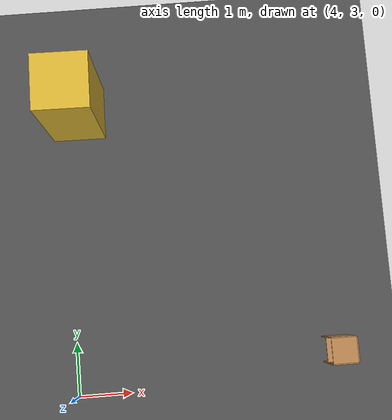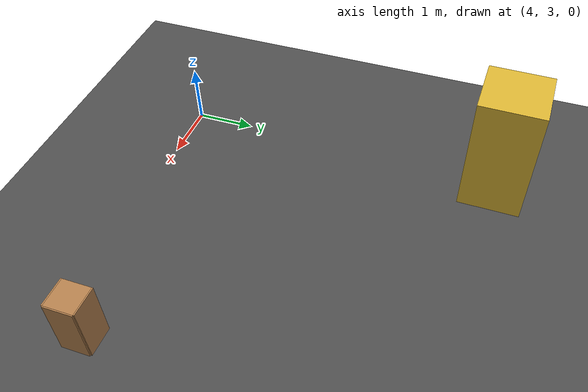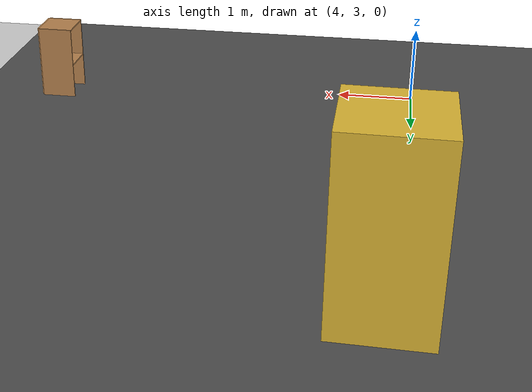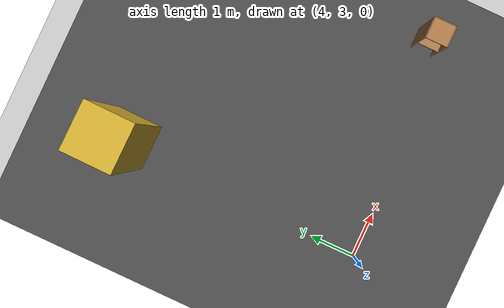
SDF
<sdf version="1.6">
 <world name="default">
  <model name="ground_plane">
   <static>1</static>
   <link name="link">
    <collision name="collision">
     <geometry><plane><normal>0 0 1</normal><size>100 100</size></plane></geometry>
     <surface>
      <contact><collide_bitmask>65535</collide_bitmask></contact>
      <friction><ode><mu>100</mu><mu2>50</mu2></ode></friction>
     </surface>
    </collision>
    <visual name="visual">
     <cast_shadows>0</cast_shadows>
     <geometry><plane><normal>0 0 1</normal><size>100 100</size></plane></geometry>
     <material>
      <script><uri>file://media/materials/scripts/gazebo.material</uri><name>Gazebo/Grey</name></script>
     </material>
    </visual>
   </link>
  </model>
  <model name="asphalt_plane">
   <static>1</static>
   <link name="link">
    <collision name="collision"><geometry><box><size>20 23.3157 0.1</size></box></geometry></collision>
    <visual name="visual">
     <cast_shadows>0</cast_shadows>
     <geometry><box><size>20 23.3157 0.1</size></box></geometry>
     <material>
      <script>
       <uri>model://asphalt_plane/materials/scripts</uri>
       <uri>model://asphalt_plane/materials/textures</uri>
       <name>vrc/asphalt</name>
      </script>
     </material>
    </visual>
   </link>
   <pose>0.082168 -0.989597 0 0 -0 0</pose>
  </model>
  <model name="cabinet">
   <static>1</static>
   <link name="cabinet_bottom_plate">
    <inertial>
     <pose>0 0 -1 0 -0 0</pose>
     <inertia><ixx>2.05</ixx><ixy>0</ixy><ixz>0</ixz><iyy>2.05</iyy><iyz>0</iyz><izz>2.05</izz></inertia>
     <mass>25</mass>
    </inertial>
    <collision name="cabinet_bottom_plate_geom">
     <pose>0 0 0.01 0 -0 0</pose>
     <geometry><box><size>0.45 0.45 0.02</size></box></geometry>
    </collision>
    <visual name="cabinet_bottom_plate_geom_visual">
     <pose>0 0 0.01 0 -0 0</pose>
     <geometry><box><size>0.45 0.45 0.02</size></box></geometry>
     <material>
      <script><uri>file://media/materials/scripts/gazebo.material</uri><name>Gazebo/Wood</name></script>
     </material>
    </visual>
    <collision name="cabinet_bottom_plate_geom_cabinet_back_plate">
     <pose>0.235 0 0.51 0 -0 0</pose>
     <geometry><box><size>0.02 0.45 1.02</size></box></geometry>
    </collision>
    <visual name="cabinet_bottom_plate_geom_cabinet_back_plate_visual">
     <pose>0.235 0 0.51 0 -0 0</pose>
     <geometry><box><size>0.02 0.45 1.02</size></box></geometry>
     <material>
      <script><uri>file://media/materials/scripts/gazebo.material</uri><name>Gazebo/Wood</name></script>
     </material>
    </visual>
    <collision name="cabinet_bottom_plate_geom_cabinet_left_plate">
     <pose>0 0.235 0.51 0 -0 0</pose>
     <geometry><box><size>0.45 0.02 1.02</size></box></geometry>
    </collision>
    <visual name="cabinet_bottom_plate_geom_cabinet_left_plate_visual">
     <pose>0 0.235 0.51 0 -0 0</pose>
     <geometry><box><size>0.45 0.02 1.02</size></box></geometry>
     <material>
      <script><uri>file://media/materials/scripts/gazebo.material</uri><name>Gazebo/Wood</name></script>
     </material>
    </visual>
    <collision name="cabinet_bottom_plate_geom_cabinet_middle_plate">
     <pose>0 0 0.51 0 -0 0</pose>
     <geometry><box><size>0.45 0.45 0.02</size></box></geometry>
    </collision>
    <visual name="cabinet_bottom_plate_geom_cabinet_middle_plate_visual">
     <pose>0 0 0.51 0 -0 0</pose>
     <geometry><box><size>0.45 0.45 0.02</size></box></geometry>
     <material>
      <script><uri>file://media/materials/scripts/gazebo.material</uri><name>Gazebo/Wood</name></script>
     </material>
    </visual>
    <collision name="cabinet_bottom_plate_geom_cabinet_right_plate">
     <pose>0 -0.235 0.51 0 -0 0</pose>
     <geometry><box><size>0.45 0.02 1.02</size></box></geometry>
    </collision>
    <visual name="cabinet_bottom_plate_geom_cabinet_right_plate_visual">
     <pose>0 -0.235 0.51 0 -0 0</pose>
     <geometry><box><size>0.45 0.02 1.02</size></box></geometry>
     <material>
      <script><uri>file://media/materials/scripts/gazebo.material</uri><name>Gazebo/Wood</name></script>
     </material>
    </visual>
    <collision name="cabinet_bottom_plate_geom_cabinet_top_plate">
     <pose>0 0 1.01 0 -0 0</pose>
     <geometry><box><size>0.45 0.45 0.02</size></box></geometry>
    </collision>
    <visual name="cabinet_bottom_plate_geom_cabinet_top_plate_visual">
     <pose>0 0 1.01 0 -0 0</pose>
     <geometry><box><size>0.45 0.45 0.02</size></box></geometry>
     <material>
      <script><uri>file://media/materials/scripts/gazebo.material</uri><name>Gazebo/Wood</name></script>
     </material>
    </visual>
   </link>
   <pose>8.87311 3.55227 0 0 -0 0</pose>
  </model>
  <model name="cube_1x1x2">
   <link name="link">
    <pose>0 0 0.05 0 -0 0</pose>
    <inertial>
     <mass>0.5167</mass>
     <inertia>
      <ixx>0.00086117</ixx>
      <ixy>0</ixy>
      <ixz>0</ixz>
      <iyy>0.00086117</iyy>
      <iyz>0</iyz>
      <izz>0.00086117</izz>
     </inertia>
    </inertial>
    <visual name="visual">
     <geometry><box><size>1 1 2</size></box></geometry>
     <material>
      <script><uri>file://media/materials/scripts/gazebo.material</uri><name>Gazebo/Gold</name></script>
      <shader type="vertex"><normal_map>__default__</normal_map></shader>
      <ambient>1 1 1 1</ambient>
      <diffuse>1 1 1 1</diffuse>
      <specular>0.2 0.2 0.2 1</specular>
      <emissive>0 0 0 1</emissive>
     </material>
    </visual>
    <collision name="collision">
     <geometry><box><size>1 1 2</size></box></geometry>
     <surface>
      <friction>
       <ode><mu>1</mu><mu2>1</mu2><fdir1>0 0 0</fdir1><slip1>0</slip1><slip2>0</slip2></ode>
       <torsional>
        <coefficient>1</coefficient>
        <patch_radius>0</patch_radius>
        <surface_radius>0.01</surface_radius>
        <use_patch_radius>0</use_patch_radius>
        <ode><slip>0</slip></ode>
       </torsional>
      </friction>
      <bounce><restitution_coefficient>0</restitution_coefficient><threshold>1e+06</threshold></bounce>
      <contact>
       <collide_without_contact>0</collide_without_contact>
       <collide_without_contact_bitmask>1</collide_without_contact_bitmask>
       <collide_bitmask>1</collide_bitmask>
       <ode>
        <soft_cfm>0</soft_cfm>
        <soft_erp>0.2</soft_erp>
        <kp>100000</kp>
        <kd>100</kd>
        <max_vel>100</max_vel>
        <min_depth>0.001</min_depth>
       </ode>
       <bullet>
        <split_impulse>1</split_impulse>
        <split_impulse_penetration_threshold>-0.01</split_impulse_penetration_threshold>
        <soft_cfm>0</soft_cfm>
        <soft_erp>0.2</soft_erp>
        <kp>100000</kp>
        <kd>100</kd>
       </bullet>
      </contact>
     </surface>
    </collision>
   </link>
   <static>0</static>
   <pose>4.29435 8.44314 1.10001 -5.6e-05 -1.1e-05 -0.011831</pose>
  </model>
 </world>
</sdf>
